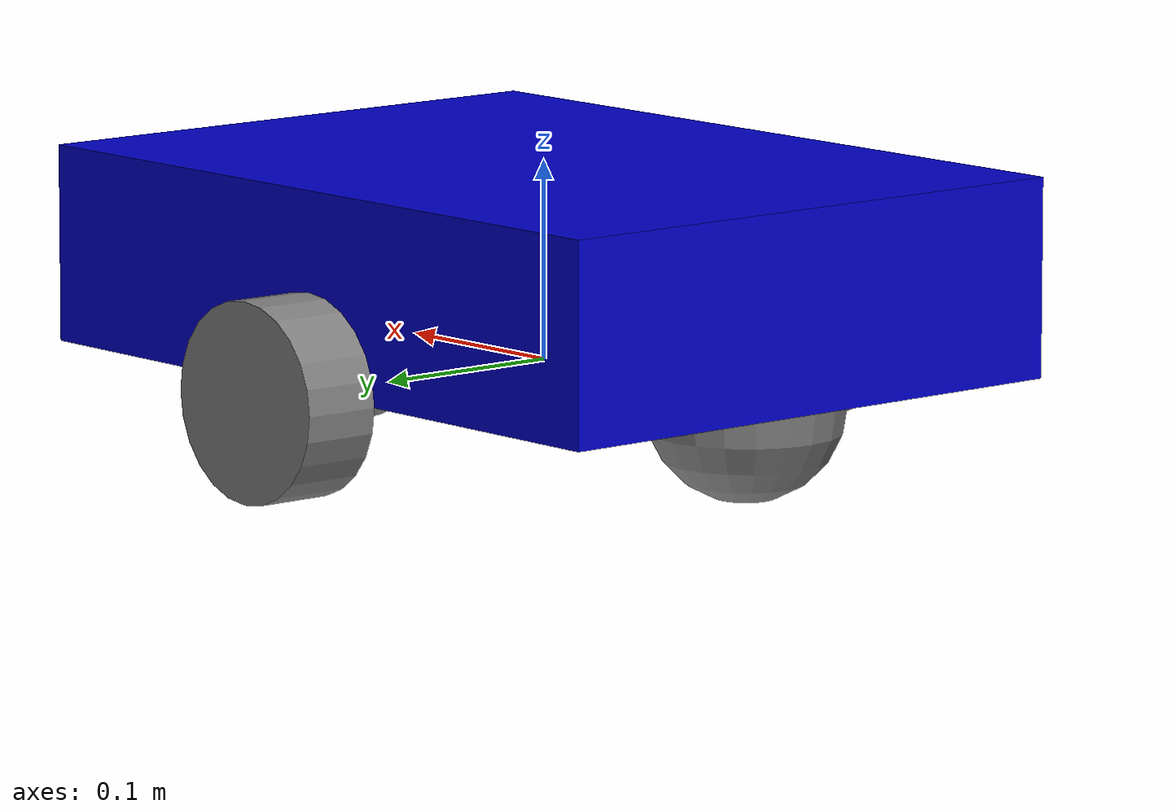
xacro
<?xml version="1.0"?>
<robot xmlns:xacro="http://www.ros.org/wiki/xacro" name="my_robot">

    <xacro:property name="wheel_radius" value="0.05" />
    <xacro:property name="wheel_length" value="0.04" />
    <xacro:property name="wheel_mass" value="0.1" />

    <link name="base_link">
      <visual>
        <origin xyz="0 0 0.05" rpy="0 0 0"/>
        <geometry><box size="0.4 0.3 0.1"/></geometry>
        <material name="blue"><color rgba="0.0 0.0 0.8 1.0"/></material>
      </visual>
      <collision>
        <origin xyz="0 0 0.05" rpy="0 0 0"/>
        <geometry><box size="0.4 0.3 0.1"/></geometry>
      </collision>
      <inertial>
          <mass value="5.0"/>
          <inertia ixx="0.1" ixy="0.0" ixz="0.0" iyy="0.1" iyz="0.0" izz="0.1"/>
      </inertial>
    </link>

    <xacro:macro name="wheel_macro" params="prefix reflect">
        <link name="${prefix}_wheel_link">
            <visual>
                <origin xyz="0 0 0" rpy="${pi/2} 0 0" />
                <geometry><cylinder radius="${wheel_radius}" length="${wheel_length}" /></geometry>
                <material name="grey"><color rgba="0.5 0.5 0.5 1.0" /></material>
            </visual>
           <collision>
            <origin xyz="0 0 0" rpy="${pi/2} 0 0" />
            <geometry>
                <cylinder radius="${wheel_radius}" length="${wheel_length}" />
            </geometry>
            <surface>
              <friction>
                <ode>
                  <mu>1.0</mu>
                  <mu2>1.0</mu2>
                </ode>
              </friction>
            </surface>
        </collision>
            <inertial>
                <mass value="${wheel_mass}"/>
                <inertia ixx="0.001" ixy="0.0" ixz="0.0" iyy="0.001" iyz="0.0" izz="0.001"/>
            </inertial>
        </link>

        <joint name="${prefix}_wheel_joint" type="continuous">
            <parent link="base_link"/>
            <child link="${prefix}_wheel_link"/>
            <origin xyz="0 ${reflect*0.17} 0" rpy="0 0 0"/>
            <axis xyz="0 1 0"/>
        </joint>
    </xacro:macro>

    <xacro:wheel_macro prefix="right" reflect="1" />
    <xacro:wheel_macro prefix="left" reflect="-1" />

    <link name="caster_wheel_front_link">
     <visual><geometry><sphere radius="0.05"/></geometry><material name="grey"/></visual>
     <collision><geometry><sphere radius="0.05"/></geometry></collision>
     <inertial><mass value="0.05"/><inertia ixx="0.0001" ixy="0.0" ixz="0.0" iyy="0.0001" iyz="0.0" izz="0.0001"/></inertial>
    </link>
    <joint name="caster_wheel_front_joint" type="fixed"><parent link="base_link"/><child link="caster_wheel_front_link"/><origin xyz="-0.15 0 0"/></joint>

    <link name="caster_wheel_back_link"><visual><geometry><sphere radius="0.05"/></geometry><material name="grey"/></visual><collision><geometry><sphere radius="0.05"/></geometry></collision><inertial><mass value="0.05"/><inertia ixx="0.0001" ixy="0.0" ixz="0.0" iyy="0.0001" iyz="0.0" izz="0.0001"/></inertial></link>
    <joint name="caster_wheel_back_joint" type="fixed"><parent link="base_link"/><child link="caster_wheel_back_link"/><origin xyz="0.15 0 0"/></joint>

    <gazebo>
        <plugin filename="gz-sim-diff-drive-system" name="gz::sim::systems::DiffDrive">
            <left_joint>left_wheel_joint</left_joint>
            <right_joint>right_wheel_joint</right_joint>
            <wheel_separation>-0.34</wheel_separation>
            <wheel_radius>${wheel_radius}</wheel_radius>
            <topic>/cmd_vel</topic>

            <odom_topic>/odom</odom_topic>
            <tf_topic>/tf</tf_topic>
            <frame_id>odom</frame_id>
            <child_frame_id>base_link</child_frame_id>
        </plugin>

        <plugin filename="gz-sim-joint-state-publisher-system" name="gz::sim::systems::JointStatePublisher">
            <topic>/joint_states</topic>
        </plugin>
    </gazebo>

</robot>
